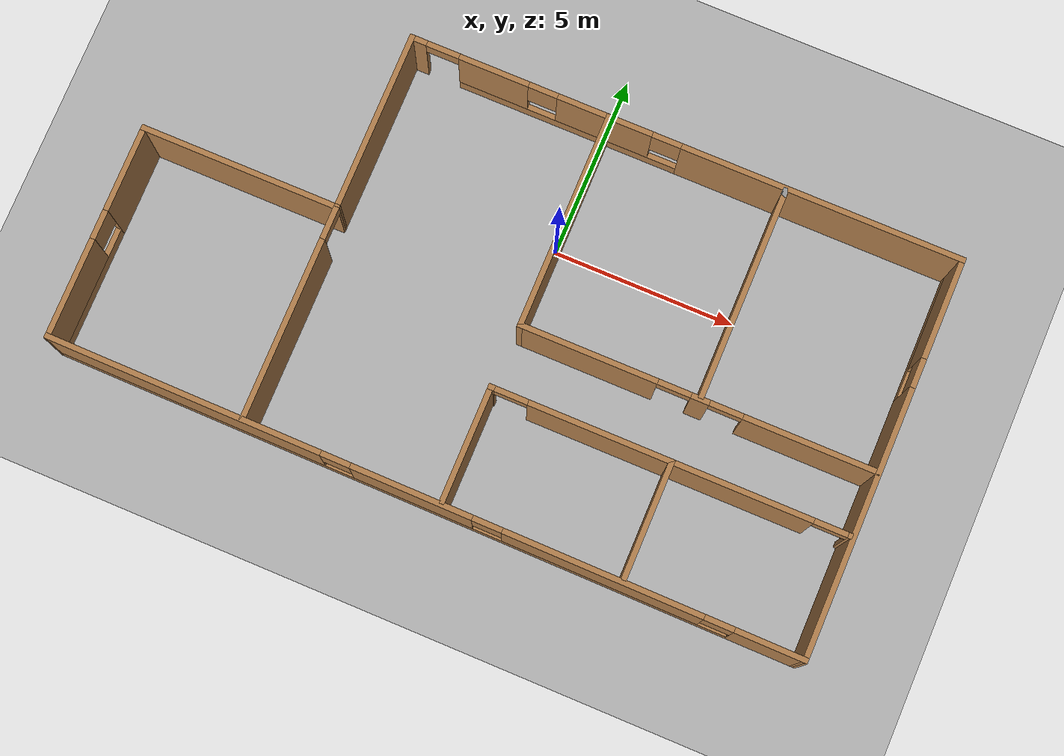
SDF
<sdf version="1.9">
 <world name="default">
  <gravity>0 0 -9.8</gravity>
  <magnetic_field>6e-06 2.3e-05 -4.2e-05</magnetic_field>
  <atmosphere type="adiabatic"/>
  <physics type="ode">
   <max_step_size>0.001</max_step_size>
   <real_time_factor>1</real_time_factor>
   <real_time_update_rate>1000</real_time_update_rate>
  </physics>
  <scene><ambient>0.4 0.4 0.4 1</ambient><background>0.7 0.7 0.7 1</background><shadows>true</shadows></scene>
  <model name="myhouse">
   <pose>-0.536216 -2.14927 0 0 -0 0</pose>
   <link name="Wall_10">
    <pose>0 -5.34973 0 0 -0 3.13426</pose>
    <visual name="Wall_10_Visual_0">
     <pose>-9.33005 0 1.25 0 -0 0</pose>
     <geometry><box><size>1.94046 0.15 2.5</size></box></geometry>
     <material>
      <script><uri>file://media/materials/scripts/gazebo.material</uri><name>Gazebo/Wood</name></script>
      <ambient>1 1 1 1</ambient>
     </material>
     <meta><layer>0</layer></meta>
    </visual>
    <collision name="Wall_10_Collision_0">
     <geometry><box><size>1.94046 0.15 2.5</size></box></geometry>
     <pose>-9.33005 0 1.25 0 -0 0</pose>
    </collision>
    <visual name="Wall_10_Visual_1">
     <pose>0.970229 0 0.25 0 -0 0</pose>
     <geometry><box><size>18.6601 0.15 0.5</size></box></geometry>
     <material>
      <script><uri>file://media/materials/scripts/gazebo.material</uri><name>Gazebo/Wood</name></script>
      <ambient>1 1 1 1</ambient>
     </material>
     <meta><layer>0</layer></meta>
    </visual>
    <collision name="Wall_10_Collision_1">
     <geometry><box><size>18.6601 0.15 0.5</size></box></geometry>
     <pose>0.970229 0 0.25 0 -0 0</pose>
    </collision>
    <visual name="Wall_10_Visual_2">
     <pose>-4.86399 0 1.5 0 -0 0</pose>
     <geometry><box><size>5.39165 0.15 2</size></box></geometry>
     <material>
      <script><uri>file://media/materials/scripts/gazebo.material</uri><name>Gazebo/Wood</name></script>
      <ambient>1 1 1 1</ambient>
     </material>
     <meta><layer>0</layer></meta>
    </visual>
    <collision name="Wall_10_Collision_2">
     <geometry><box><size>5.39165 0.15 2</size></box></geometry>
     <pose>-4.86399 0 1.5 0 -0 0</pose>
    </collision>
    <visual name="Wall_10_Visual_3">
     <pose>0.284205 0 1.5 0 -0 0</pose>
     <geometry><box><size>3.30475 0.15 2</size></box></geometry>
     <material>
      <script><uri>file://media/materials/scripts/gazebo.material</uri><name>Gazebo/Wood</name></script>
      <ambient>1 1 1 1</ambient>
     </material>
     <meta><layer>0</layer></meta>
    </visual>
    <collision name="Wall_10_Collision_3">
     <geometry><box><size>3.30475 0.15 2</size></box></geometry>
     <pose>0.284205 0 1.5 0 -0 0</pose>
    </collision>
    <visual name="Wall_10_Visual_4">
     <pose>6.51843 0 1.5 0 -0 0</pose>
     <geometry><box><size>7.5637 0.15 2</size></box></geometry>
     <material>
      <script><uri>file://media/materials/scripts/gazebo.material</uri><name>Gazebo/Wood</name></script>
      <ambient>1 1 1 1</ambient>
     </material>
     <meta><layer>0</layer></meta>
    </visual>
    <collision name="Wall_10_Collision_4">
     <geometry><box><size>7.5637 0.15 2</size></box></geometry>
     <pose>6.51843 0 1.5 0 -0 0</pose>
    </collision>
    <visual name="Wall_10_Visual_5">
     <pose>-7.95982 0 1.9 0 -0 0</pose>
     <geometry><box><size>0.8 0.15 1.2</size></box></geometry>
     <material>
      <script><uri>file://media/materials/scripts/gazebo.material</uri><name>Gazebo/Wood</name></script>
      <ambient>1 1 1 1</ambient>
     </material>
     <meta><layer>0</layer></meta>
    </visual>
    <collision name="Wall_10_Collision_5">
     <geometry><box><size>0.8 0.15 1.2</size></box></geometry>
     <pose>-7.95982 0 1.9 0 -0 0</pose>
    </collision>
    <visual name="Wall_10_Visual_6">
     <pose>-1.76817 0 1.9 0 -0 0</pose>
     <geometry><box><size>0.8 0.15 1.2</size></box></geometry>
     <material>
      <script><uri>file://media/materials/scripts/gazebo.material</uri><name>Gazebo/Wood</name></script>
      <ambient>1 1 1 1</ambient>
     </material>
     <meta><layer>0</layer></meta>
    </visual>
    <collision name="Wall_10_Collision_6">
     <geometry><box><size>0.8 0.15 1.2</size></box></geometry>
     <pose>-1.76817 0 1.9 0 -0 0</pose>
    </collision>
    <visual name="Wall_10_Visual_7">
     <pose>2.33658 0 1.9 0 -0 0</pose>
     <geometry><box><size>0.8 0.15 1.2</size></box></geometry>
     <material>
      <script><uri>file://media/materials/scripts/gazebo.material</uri><name>Gazebo/Wood</name></script>
      <ambient>1 1 1 1</ambient>
     </material>
     <meta><layer>0</layer></meta>
    </visual>
    <collision name="Wall_10_Collision_7">
     <geometry><box><size>0.8 0.15 1.2</size></box></geometry>
     <pose>2.33658 0 1.9 0 -0 0</pose>
    </collision>
    <inertial>
     <mass>1</mass>
     <inertia><ixx>1</ixx><ixy>0</ixy><ixz>0</ixz><iyy>1</iyy><iyz>0</iyz><izz>1</izz></inertia>
    </inertial>
   </link>
   <link name="Wall_13">
    <pose>-4.875 -2.34973 0 0 0 -1.5708</pose>
    <visual name="Wall_13_Visual_0">
     <pose>-2.96469 0 1.25 0 -0 0</pose>
     <geometry><box><size>0.070618 0.15 2.5</size></box></geometry>
     <material>
      <script><uri>file://media/materials/scripts/gazebo.material</uri><name>Gazebo/Wood</name></script>
      <ambient>1 1 1 1</ambient>
     </material>
     <meta><layer>0</layer></meta>
    </visual>
    <collision name="Wall_13_Collision_0">
     <geometry><box><size>0.070618 0.15 2.5</size></box></geometry>
     <pose>-2.96469 0 1.25 0 -0 0</pose>
    </collision>
    <visual name="Wall_13_Visual_1">
     <pose>0.485309 0 1.25 0 -0 0</pose>
     <geometry><box><size>5.02938 0.15 2.5</size></box></geometry>
     <material>
      <script><uri>file://media/materials/scripts/gazebo.material</uri><name>Gazebo/Wood</name></script>
      <ambient>1 1 1 1</ambient>
     </material>
     <meta><layer>0</layer></meta>
    </visual>
    <collision name="Wall_13_Collision_1">
     <geometry><box><size>5.02938 0.15 2.5</size></box></geometry>
     <pose>0.485309 0 1.25 0 -0 0</pose>
    </collision>
    <visual name="Wall_13_Visual_2">
     <pose>-2.47938 0 2.25 0 -0 0</pose>
     <geometry><box><size>0.9 0.15 0.5</size></box></geometry>
     <material>
      <script><uri>file://media/materials/scripts/gazebo.material</uri><name>Gazebo/Wood</name></script>
      <ambient>1 1 1 1</ambient>
     </material>
     <meta><layer>0</layer></meta>
    </visual>
    <collision name="Wall_13_Collision_2">
     <geometry><box><size>0.9 0.15 0.5</size></box></geometry>
     <pose>-2.47938 0 2.25 0 -0 0</pose>
    </collision>
    <inertial>
     <mass>1</mass>
     <inertia><ixx>1</ixx><ixy>0</ixy><ixz>0</ixz><iyy>1</iyy><iyz>0</iyz><izz>1</izz></inertia>
    </inertial>
   </link>
   <link name="Wall_19">
    <collision name="Wall_19_Collision">
     <geometry><box><size>5.75 0.15 2.5</size></box></geometry>
     <pose>0 0 1.25 0 -0 0</pose>
    </collision>
    <visual name="Wall_19_Visual">
     <pose>0 0 1.25 0 -0 0</pose>
     <geometry><box><size>5.75 0.15 2.5</size></box></geometry>
     <material>
      <script><uri>file://media/materials/scripts/gazebo.material</uri><name>Gazebo/Wood</name></script>
      <ambient>1 1 1 1</ambient>
     </material>
     <meta><layer>0</layer></meta>
    </visual>
    <pose>5.45462 2.46153 0 0 -0 1.5708</pose>
    <inertial>
     <mass>1</mass>
     <inertia><ixx>1</ixx><ixy>0</ixy><ixz>0</ixz><iyy>1</iyy><iyz>0</iyz><izz>1</izz></inertia>
    </inertial>
   </link>
   <link name="Wall_21">
    <collision name="Wall_21_Collision">
     <geometry><box><size>0.15 0.15 2.5</size></box></geometry>
     <pose>0 0 1.25 0 -0 0</pose>
    </collision>
    <visual name="Wall_21_Visual">
     <pose>0 0 1.25 0 -0 0</pose>
     <geometry><box><size>0.15 0.15 2.5</size></box></geometry>
     <material>
      <script><uri>file://media/materials/scripts/gazebo.material</uri><name>Gazebo/Grey</name></script>
      <ambient>1 1 1 1</ambient>
     </material>
     <meta><layer>0</layer></meta>
    </visual>
    <pose>5.45462 5.26153 0 0 -0 0</pose>
    <inertial>
     <mass>1</mass>
     <inertia><ixx>1</ixx><ixy>0</ixy><ixz>0</ixz><iyy>1</iyy><iyz>0</iyz><izz>1</izz></inertia>
    </inertial>
   </link>
   <link name="Wall_22">
    <collision name="Wall_22_Collision">
     <geometry><box><size>0.15 0.15 2.5</size></box></geometry>
     <pose>0 0 1.25 0 -0 0</pose>
    </collision>
    <visual name="Wall_22_Visual">
     <pose>0 0 1.25 0 -0 0</pose>
     <geometry><box><size>0.15 0.15 2.5</size></box></geometry>
     <material>
      <script><uri>file://media/materials/scripts/gazebo.material</uri><name>Gazebo/Grey</name></script>
      <ambient>1 1 1 1</ambient>
     </material>
     <meta><layer>0</layer></meta>
    </visual>
    <pose>5.45462 5.26153 0 0 -0 0</pose>
    <inertial>
     <mass>1</mass>
     <inertia><ixx>1</ixx><ixy>0</ixy><ixz>0</ixz><iyy>1</iyy><iyz>0</iyz><izz>1</izz></inertia>
    </inertial>
   </link>
   <link name="Wall_23">
    <collision name="Wall_23_Collision">
     <geometry><box><size>0.15 0.15 2.5</size></box></geometry>
     <pose>0 0 1.25 0 -0 0</pose>
    </collision>
    <visual name="Wall_23_Visual">
     <pose>0 0 1.25 0 -0 0</pose>
     <geometry><box><size>0.15 0.15 2.5</size></box></geometry>
     <material>
      <script><uri>file://media/materials/scripts/gazebo.material</uri><name>Gazebo/Grey</name></script>
      <ambient>1 1 1 1</ambient>
     </material>
     <meta><layer>0</layer></meta>
    </visual>
    <pose>5.45462 5.26153 0 0 -0 0</pose>
    <inertial>
     <mass>1</mass>
     <inertia><ixx>1</ixx><ixy>0</ixy><ixz>0</ixz><iyy>1</iyy><iyz>0</iyz><izz>1</izz></inertia>
    </inertial>
   </link>
   <link name="Wall_24">
    <collision name="Wall_24_Collision">
     <geometry><box><size>0.25 0.15 2.5</size></box></geometry>
     <pose>0 0 1.25 0 -0 0</pose>
    </collision>
    <visual name="Wall_24_Visual">
     <pose>0 0 1.25 0 -0 0</pose>
     <geometry><box><size>0.25 0.15 2.5</size></box></geometry>
     <material>
      <script><uri>file://media/materials/scripts/gazebo.material</uri><name>Gazebo/Grey</name></script>
      <ambient>1 1 1 1</ambient>
     </material>
     <meta><layer>0</layer></meta>
    </visual>
    <pose>5.45462 5.31153 0 0 -0 1.5708</pose>
    <inertial>
     <mass>1</mass>
     <inertia><ixx>1</ixx><ixy>0</ixy><ixz>0</ixz><iyy>1</iyy><iyz>0</iyz><izz>1</izz></inertia>
    </inertial>
   </link>
   <link name="Wall_3">
    <pose>10.225 0.000274 0 0 -0 1.5708</pose>
    <visual name="Wall_3_Visual_0">
     <pose>-1.80705 0 1.25 0 -0 0</pose>
     <geometry><box><size>7.3859 0.15 2.5</size></box></geometry>
     <material>
      <script><uri>file://media/materials/scripts/gazebo.material</uri><name>Gazebo/Wood</name></script>
      <ambient>1 1 1 1</ambient>
     </material>
     <meta><layer>0</layer></meta>
    </visual>
    <collision name="Wall_3_Collision_0">
     <geometry><box><size>7.3859 0.15 2.5</size></box></geometry>
     <pose>-1.80705 0 1.25 0 -0 0</pose>
    </collision>
    <visual name="Wall_3_Visual_1">
     <pose>3.69295 0 0.25 0 -0 0</pose>
     <geometry><box><size>3.6141 0.15 0.5</size></box></geometry>
     <material>
      <script><uri>file://media/materials/scripts/gazebo.material</uri><name>Gazebo/Wood</name></script>
      <ambient>1 1 1 1</ambient>
     </material>
     <meta><layer>0</layer></meta>
    </visual>
    <collision name="Wall_3_Collision_1">
     <geometry><box><size>3.6141 0.15 0.5</size></box></geometry>
     <pose>3.69295 0 0.25 0 -0 0</pose>
    </collision>
    <visual name="Wall_3_Visual_2">
     <pose>4.09295 0 1.5 0 -0 0</pose>
     <geometry><box><size>2.8141 0.15 2</size></box></geometry>
     <material>
      <script><uri>file://media/materials/scripts/gazebo.material</uri><name>Gazebo/Wood</name></script>
      <ambient>1 1 1 1</ambient>
     </material>
     <meta><layer>0</layer></meta>
    </visual>
    <collision name="Wall_3_Collision_2">
     <geometry><box><size>2.8141 0.15 2</size></box></geometry>
     <pose>4.09295 0 1.5 0 -0 0</pose>
    </collision>
    <visual name="Wall_3_Visual_3">
     <pose>2.2859 0 1.9 0 -0 0</pose>
     <geometry><box><size>0.8 0.15 1.2</size></box></geometry>
     <material>
      <script><uri>file://media/materials/scripts/gazebo.material</uri><name>Gazebo/Wood</name></script>
      <ambient>1 1 1 1</ambient>
     </material>
     <meta><layer>0</layer></meta>
    </visual>
    <collision name="Wall_3_Collision_3">
     <geometry><box><size>0.8 0.15 1.2</size></box></geometry>
     <pose>2.2859 0 1.9 0 -0 0</pose>
    </collision>
    <inertial>
     <mass>1</mass>
     <inertia><ixx>1</ixx><ixy>0</ixy><ixz>0</ixz><iyy>1</iyy><iyz>0</iyz><izz>1</izz></inertia>
    </inertial>
   </link>
   <link name="Wall_35">
    <pose>5.38702 -0.426866 0 0 -0 0</pose>
    <visual name="Wall_35_Visual_0">
     <pose>-2.97554 0 1.25 0 -0 0</pose>
     <geometry><box><size>3.79891 0.15 2.5</size></box></geometry>
     <material>
      <script><uri>file://media/materials/scripts/gazebo.material</uri><name>Gazebo/Wood</name></script>
      <ambient>1 1 1 1</ambient>
     </material>
     <meta><layer>0</layer></meta>
    </visual>
    <collision name="Wall_35_Collision_0">
     <geometry><box><size>3.79891 0.15 2.5</size></box></geometry>
     <pose>-2.97554 0 1.25 0 -0 0</pose>
    </collision>
    <visual name="Wall_35_Visual_1">
     <pose>0.069565 0 1.25 0 -0 0</pose>
     <geometry><box><size>0.491304 0.15 2.5</size></box></geometry>
     <material>
      <script><uri>file://media/materials/scripts/gazebo.material</uri><name>Gazebo/Wood</name></script>
      <ambient>1 1 1 1</ambient>
     </material>
     <meta><layer>0</layer></meta>
    </visual>
    <collision name="Wall_35_Collision_1">
     <geometry><box><size>0.491304 0.15 2.5</size></box></geometry>
     <pose>0.069565 0 1.25 0 -0 0</pose>
    </collision>
    <visual name="Wall_35_Visual_2">
     <pose>3.04511 0 1.25 0 -0 0</pose>
     <geometry><box><size>3.65978 0.15 2.5</size></box></geometry>
     <material>
      <script><uri>file://media/materials/scripts/gazebo.material</uri><name>Gazebo/Wood</name></script>
      <ambient>1 1 1 1</ambient>
     </material>
     <meta><layer>0</layer></meta>
    </visual>
    <collision name="Wall_35_Collision_2">
     <geometry><box><size>3.65978 0.15 2.5</size></box></geometry>
     <pose>3.04511 0 1.25 0 -0 0</pose>
    </collision>
    <visual name="Wall_35_Visual_3">
     <pose>-0.626087 0 2.25 0 -0 0</pose>
     <geometry><box><size>0.9 0.15 0.5</size></box></geometry>
     <material>
      <script><uri>file://media/materials/scripts/gazebo.material</uri><name>Gazebo/Wood</name></script>
      <ambient>1 1 1 1</ambient>
     </material>
     <meta><layer>0</layer></meta>
    </visual>
    <collision name="Wall_35_Collision_3">
     <geometry><box><size>0.9 0.15 0.5</size></box></geometry>
     <pose>-0.626087 0 2.25 0 -0 0</pose>
    </collision>
    <visual name="Wall_35_Visual_4">
     <pose>0.765217 0 2.25 0 -0 0</pose>
     <geometry><box><size>0.9 0.15 0.5</size></box></geometry>
     <material>
      <script><uri>file://media/materials/scripts/gazebo.material</uri><name>Gazebo/Wood</name></script>
      <ambient>1 1 1 1</ambient>
     </material>
     <meta><layer>0</layer></meta>
    </visual>
    <collision name="Wall_35_Collision_4">
     <geometry><box><size>0.9 0.15 0.5</size></box></geometry>
     <pose>0.765217 0 2.25 0 -0 0</pose>
    </collision>
    <inertial>
     <mass>1</mass>
     <inertia><ixx>1</ixx><ixy>0</ixy><ixz>0</ixz><iyy>1</iyy><iyz>0</iyz><izz>1</izz></inertia>
    </inertial>
   </link>
   <link name="Wall_37">
    <pose>5.31745 -2.166 0 0 -0 0</pose>
    <visual name="Wall_37_Visual_0">
     <pose>-4.78424 0 1.25 0 -0 0</pose>
     <geometry><box><size>0.181522 0.15 2.5</size></box></geometry>
     <material>
      <script><uri>file://media/materials/scripts/gazebo.material</uri><name>Gazebo/Wood</name></script>
      <ambient>1 1 1 1</ambient>
     </material>
     <meta><layer>0</layer></meta>
    </visual>
    <collision name="Wall_37_Collision_0">
     <geometry><box><size>0.181522 0.15 2.5</size></box></geometry>
     <pose>-4.78424 0 1.25 0 -0 0</pose>
    </collision>
    <visual name="Wall_37_Visual_1">
     <pose>0.034782 0 1.25 0 -0 0</pose>
     <geometry><box><size>7.65652 0.15 2.5</size></box></geometry>
     <material>
      <script><uri>file://media/materials/scripts/gazebo.material</uri><name>Gazebo/Wood</name></script>
      <ambient>1 1 1 1</ambient>
     </material>
     <meta><layer>0</layer></meta>
    </visual>
    <collision name="Wall_37_Collision_1">
     <geometry><box><size>7.65652 0.15 2.5</size></box></geometry>
     <pose>0.034782 0 1.25 0 -0 0</pose>
    </collision>
    <visual name="Wall_37_Visual_2">
     <pose>4.81902 0 1.25 0 -0 0</pose>
     <geometry><box><size>0.111957 0.15 2.5</size></box></geometry>
     <material>
      <script><uri>file://media/materials/scripts/gazebo.material</uri><name>Gazebo/Wood</name></script>
      <ambient>1 1 1 1</ambient>
     </material>
     <meta><layer>0</layer></meta>
    </visual>
    <collision name="Wall_37_Collision_2">
     <geometry><box><size>0.111957 0.15 2.5</size></box></geometry>
     <pose>4.81902 0 1.25 0 -0 0</pose>
    </collision>
    <visual name="Wall_37_Visual_3">
     <pose>-4.24348 0 2.25 0 -0 0</pose>
     <geometry><box><size>0.9 0.15 0.5</size></box></geometry>
     <material>
      <script><uri>file://media/materials/scripts/gazebo.material</uri><name>Gazebo/Wood</name></script>
      <ambient>1 1 1 1</ambient>
     </material>
     <meta><layer>0</layer></meta>
    </visual>
    <collision name="Wall_37_Collision_3">
     <geometry><box><size>0.9 0.15 0.5</size></box></geometry>
     <pose>-4.24348 0 2.25 0 -0 0</pose>
    </collision>
    <visual name="Wall_37_Visual_4">
     <pose>4.31304 0 2.25 0 -0 0</pose>
     <geometry><box><size>0.9 0.15 0.5</size></box></geometry>
     <material>
      <script><uri>file://media/materials/scripts/gazebo.material</uri><name>Gazebo/Wood</name></script>
      <ambient>1 1 1 1</ambient>
     </material>
     <meta><layer>0</layer></meta>
    </visual>
    <collision name="Wall_37_Collision_4">
     <geometry><box><size>0.9 0.15 0.5</size></box></geometry>
     <pose>4.31304 0 2.25 0 -0 0</pose>
    </collision>
    <inertial>
     <mass>1</mass>
     <inertia><ixx>1</ixx><ixy>0</ixy><ixz>0</ixz><iyy>1</iyy><iyz>0</iyz><izz>1</izz></inertia>
    </inertial>
   </link>
   <link name="Wall_39">
    <collision name="Wall_39_Collision">
     <geometry><box><size>3.25 0.15 2.5</size></box></geometry>
     <pose>0 0 1.25 0 -0 0</pose>
    </collision>
    <visual name="Wall_39_Visual">
     <pose>0 0 1.25 0 -0 0</pose>
     <geometry><box><size>3.25 0.15 2.5</size></box></geometry>
     <material>
      <script><uri>file://media/materials/scripts/gazebo.material</uri><name>Gazebo/Wood</name></script>
      <ambient>1 1 1 1</ambient>
     </material>
     <meta><layer>0</layer></meta>
    </visual>
    <pose>5.38702 -3.716 0 0 0 -1.5708</pose>
    <inertial>
     <mass>1</mass>
     <inertia><ixx>1</ixx><ixy>0</ixy><ixz>0</ixz><iyy>1</iyy><iyz>0</iyz><izz>1</izz></inertia>
    </inertial>
   </link>
   <link name="Wall_4">
    <pose>2.675 5.42527 0 0 -0 3.14159</pose>
    <visual name="Wall_4_Visual_0">
     <pose>-3.76851 0 1.25 0 -0 0</pose>
     <geometry><box><size>7.71298 0.15 2.5</size></box></geometry>
     <material>
      <script><uri>file://media/materials/scripts/gazebo.material</uri><name>Gazebo/Wood</name></script>
      <ambient>1 1 1 1</ambient>
     </material>
     <meta><layer>0</layer></meta>
    </visual>
    <collision name="Wall_4_Collision_0">
     <geometry><box><size>7.71298 0.15 2.5</size></box></geometry>
     <pose>-3.76851 0 1.25 0 -0 0</pose>
    </collision>
    <visual name="Wall_4_Visual_1">
     <pose>7.37714 0 1.25 0 -0 0</pose>
     <geometry><box><size>0.495714 0.15 2.5</size></box></geometry>
     <material>
      <script><uri>file://media/materials/scripts/gazebo.material</uri><name>Gazebo/Wood</name></script>
      <ambient>1 1 1 1</ambient>
     </material>
     <meta><layer>0</layer></meta>
    </visual>
    <collision name="Wall_4_Collision_1">
     <geometry><box><size>0.495714 0.15 2.5</size></box></geometry>
     <pose>7.37714 0 1.25 0 -0 0</pose>
    </collision>
    <visual name="Wall_4_Visual_2">
     <pose>3.15863 0 0.25 0 -0 0</pose>
     <geometry><box><size>6.1413 0.15 0.5</size></box></geometry>
     <material>
      <script><uri>file://media/materials/scripts/gazebo.material</uri><name>Gazebo/Wood</name></script>
      <ambient>1 1 1 1</ambient>
     </material>
     <meta><layer>0</layer></meta>
    </visual>
    <collision name="Wall_4_Collision_2">
     <geometry><box><size>6.1413 0.15 0.5</size></box></geometry>
     <pose>3.15863 0 0.25 0 -0 0</pose>
    </collision>
    <visual name="Wall_4_Visual_3">
     <pose>2.19233 0 1.5 0 -0 0</pose>
     <geometry><box><size>2.6087 0.15 2</size></box></geometry>
     <material>
      <script><uri>file://media/materials/scripts/gazebo.material</uri><name>Gazebo/Wood</name></script>
      <ambient>1 1 1 1</ambient>
     </material>
     <meta><layer>0</layer></meta>
    </visual>
    <collision name="Wall_4_Collision_3">
     <geometry><box><size>2.6087 0.15 2</size></box></geometry>
     <pose>2.19233 0 1.5 0 -0 0</pose>
    </collision>
    <visual name="Wall_4_Visual_4">
     <pose>5.26298 0 1.5 0 -0 0</pose>
     <geometry><box><size>1.93261 0.15 2</size></box></geometry>
     <material>
      <script><uri>file://media/materials/scripts/gazebo.material</uri><name>Gazebo/Wood</name></script>
      <ambient>1 1 1 1</ambient>
     </material>
     <meta><layer>0</layer></meta>
    </visual>
    <collision name="Wall_4_Collision_4">
     <geometry><box><size>1.93261 0.15 2</size></box></geometry>
     <pose>5.26298 0 1.5 0 -0 0</pose>
    </collision>
    <visual name="Wall_4_Visual_5">
     <pose>0.487981 0 1.9 0 -0 0</pose>
     <geometry><box><size>0.8 0.15 1.2</size></box></geometry>
     <material>
      <script><uri>file://media/materials/scripts/gazebo.material</uri><name>Gazebo/Wood</name></script>
      <ambient>1 1 1 1</ambient>
     </material>
     <meta><layer>0</layer></meta>
    </visual>
    <collision name="Wall_4_Collision_5">
     <geometry><box><size>0.8 0.15 1.2</size></box></geometry>
     <pose>0.487981 0 1.9 0 -0 0</pose>
    </collision>
    <visual name="Wall_4_Visual_6">
     <pose>3.89668 0 1.9 0 -0 0</pose>
     <geometry><box><size>0.8 0.15 1.2</size></box></geometry>
     <material>
      <script><uri>file://media/materials/scripts/gazebo.material</uri><name>Gazebo/Wood</name></script>
      <ambient>1 1 1 1</ambient>
     </material>
     <meta><layer>0</layer></meta>
    </visual>
    <collision name="Wall_4_Collision_6">
     <geometry><box><size>0.8 0.15 1.2</size></box></geometry>
     <pose>3.89668 0 1.9 0 -0 0</pose>
    </collision>
    <visual name="Wall_4_Visual_7">
     <pose>6.67929 0 2.25 0 -0 0</pose>
     <geometry><box><size>0.9 0.15 0.5</size></box></geometry>
     <material>
      <script><uri>file://media/materials/scripts/gazebo.material</uri><name>Gazebo/Wood</name></script>
      <ambient>1 1 1 1</ambient>
     </material>
     <meta><layer>0</layer></meta>
    </visual>
    <collision name="Wall_4_Collision_7">
     <geometry><box><size>0.9 0.15 0.5</size></box></geometry>
     <pose>6.67929 0 2.25 0 -0 0</pose>
    </collision>
    <inertial>
     <mass>1</mass>
     <inertia><ixx>1</ixx><ixy>0</ixy><ixz>0</ixz><iyy>1</iyy><iyz>0</iyz><izz>1</izz></inertia>
    </inertial>
   </link>
   <link name="Wall_42">
    <collision name="Wall_42_Collision">
     <geometry><box><size>6 0.15 2.5</size></box></geometry>
     <pose>0 0 1.25 0 -0 0</pose>
    </collision>
    <visual name="Wall_42_Visual">
     <pose>0 0 1.25 0 -0 0</pose>
     <geometry><box><size>6 0.15 2.5</size></box></geometry>
     <material>
      <script><uri>file://media/materials/scripts/gazebo.material</uri><name>Gazebo/Wood</name></script>
      <ambient>1 1 1 1</ambient>
     </material>
     <meta><layer>0</layer></meta>
    </visual>
    <pose>0.587019 2.49813 0 0 -0 1.5708</pose>
    <inertial>
     <mass>1</mass>
     <inertia><ixx>1</ixx><ixy>0</ixy><ixz>0</ixz><iyy>1</iyy><iyz>0</iyz><izz>1</izz></inertia>
    </inertial>
   </link>
   <link name="Wall_44">
    <collision name="Wall_44_Collision">
     <geometry><box><size>3.25 0.15 2.5</size></box></geometry>
     <pose>0 0 1.25 0 -0 0</pose>
    </collision>
    <visual name="Wall_44_Visual">
     <pose>0 0 1.25 0 -0 0</pose>
     <geometry><box><size>3.25 0.15 2.5</size></box></geometry>
     <material>
      <script><uri>file://media/materials/scripts/gazebo.material</uri><name>Gazebo/Wood</name></script>
      <ambient>1 1 1 1</ambient>
     </material>
     <meta><layer>0</layer></meta>
    </visual>
    <pose>0.517454 -3.716 0 0 0 -1.5708</pose>
    <inertial>
     <mass>1</mass>
     <inertia><ixx>1</ixx><ixy>0</ixy><ixz>0</ixz><iyy>1</iyy><iyz>0</iyz><izz>1</izz></inertia>
    </inertial>
   </link>
   <link name="Wall_5">
    <collision name="Wall_5_Collision">
     <geometry><box><size>5 0.15 2.5</size></box></geometry>
     <pose>0 0 1.25 0 -0 0</pose>
    </collision>
    <visual name="Wall_5_Visual">
     <pose>0 0 1.25 0 -0 0</pose>
     <geometry><box><size>5 0.15 2.5</size></box></geometry>
     <material>
      <script><uri>file://media/materials/scripts/gazebo.material</uri><name>Gazebo/Wood</name></script>
      <ambient>1 1 1 1</ambient>
     </material>
     <meta><layer>0</layer></meta>
    </visual>
    <pose>-4.875 3.00027 0 0 0 -1.5708</pose>
    <inertial>
     <mass>1</mass>
     <inertia><ixx>1</ixx><ixy>0</ixy><ixz>0</ixz><iyy>1</iyy><iyz>0</iyz><izz>1</izz></inertia>
    </inertial>
   </link>
   <link name="Wall_6">
    <collision name="Wall_6_Collision">
     <geometry><box><size>5.5 0.15 2.5</size></box></geometry>
     <pose>0 0 1.25 0 -0 0</pose>
    </collision>
    <visual name="Wall_6_Visual">
     <pose>0 0 1.25 0 -0 0</pose>
     <geometry><box><size>5.5 0.15 2.5</size></box></geometry>
     <material>
      <script><uri>file://media/materials/scripts/gazebo.material</uri><name>Gazebo/Wood</name></script>
      <ambient>1 1 1 1</ambient>
     </material>
     <meta><layer>0</layer></meta>
    </visual>
    <pose>-7.55 0.575274 0 0 -0 3.14159</pose>
    <inertial>
     <mass>1</mass>
     <inertia><ixx>1</ixx><ixy>0</ixy><ixz>0</ixz><iyy>1</iyy><iyz>0</iyz><izz>1</izz></inertia>
    </inertial>
   </link>
   <link name="Wall_7">
    <pose>-10.225 -2.34973 0 0 0 -1.5708</pose>
    <visual name="Wall_7_Visual_0">
     <pose>-1.79187 0 1.25 0 -0 0</pose>
     <geometry><box><size>2.41627 0.15 2.5</size></box></geometry>
     <material>
      <script><uri>file://media/materials/scripts/gazebo.material</uri><name>Gazebo/Wood</name></script>
      <ambient>1 1 1 1</ambient>
     </material>
     <meta><layer>0</layer></meta>
    </visual>
    <collision name="Wall_7_Collision_0">
     <geometry><box><size>2.41627 0.15 2.5</size></box></geometry>
     <pose>-1.79187 0 1.25 0 -0 0</pose>
    </collision>
    <visual name="Wall_7_Visual_1">
     <pose>1.20813 0 0.25 0 -0 0</pose>
     <geometry><box><size>3.58373 0.15 0.5</size></box></geometry>
     <material>
      <script><uri>file://media/materials/scripts/gazebo.material</uri><name>Gazebo/Wood</name></script>
      <ambient>1 1 1 1</ambient>
     </material>
     <meta><layer>0</layer></meta>
    </visual>
    <collision name="Wall_7_Collision_1">
     <geometry><box><size>3.58373 0.15 0.5</size></box></geometry>
     <pose>1.20813 0 0.25 0 -0 0</pose>
    </collision>
    <visual name="Wall_7_Visual_2">
     <pose>1.60814 0 1.5 0 -0 0</pose>
     <geometry><box><size>2.78373 0.15 2</size></box></geometry>
     <material>
      <script><uri>file://media/materials/scripts/gazebo.material</uri><name>Gazebo/Wood</name></script>
      <ambient>1 1 1 1</ambient>
     </material>
     <meta><layer>0</layer></meta>
    </visual>
    <collision name="Wall_7_Collision_2">
     <geometry><box><size>2.78373 0.15 2</size></box></geometry>
     <pose>1.60814 0 1.5 0 -0 0</pose>
    </collision>
    <visual name="Wall_7_Visual_3">
     <pose>-0.18373 0 1.9 0 -0 0</pose>
     <geometry><box><size>0.8 0.15 1.2</size></box></geometry>
     <material>
      <script><uri>file://media/materials/scripts/gazebo.material</uri><name>Gazebo/Wood</name></script>
      <ambient>1 1 1 1</ambient>
     </material>
     <meta><layer>0</layer></meta>
    </visual>
    <collision name="Wall_7_Collision_3">
     <geometry><box><size>0.8 0.15 1.2</size></box></geometry>
     <pose>-0.18373 0 1.9 0 -0 0</pose>
    </collision>
    <inertial>
     <mass>1</mass>
     <inertia><ixx>1</ixx><ixy>0</ixy><ixz>0</ixz><iyy>1</iyy><iyz>0</iyz><izz>1</izz></inertia>
    </inertial>
   </link>
   <static>true</static>
  </model>
  <model name="ground_plane">
   <static>true</static>
   <link name="link">
    <collision name="collision">
     <geometry><plane><normal>0 0 1</normal><size>100 100</size></plane></geometry>
     <surface><friction><ode><mu>100</mu><mu2>50</mu2></ode></friction></surface>
    </collision>
    <visual name="visual">
     <cast_shadows>false</cast_shadows>
     <geometry><plane><normal>0 0 1</normal><size>100 100</size></plane></geometry>
     <material>
      <ambient>0.3 0.3 0.3 1</ambient>
      <diffuse>0.7 0.7 0.7 1</diffuse>
      <specular>0.01 0.01 0.01 1</specular>
     </material>
    </visual>
    <inertial>
     <mass>1</mass>
     <inertia><ixx>1</ixx><ixy>0</ixy><ixz>0</ixz><iyy>1</iyy><iyz>0</iyz><izz>1</izz></inertia>
    </inertial>
   </link>
   <pose>-0.585214 0.756377 0 0 -0 0</pose>
  </model>
 </world>
</sdf>
